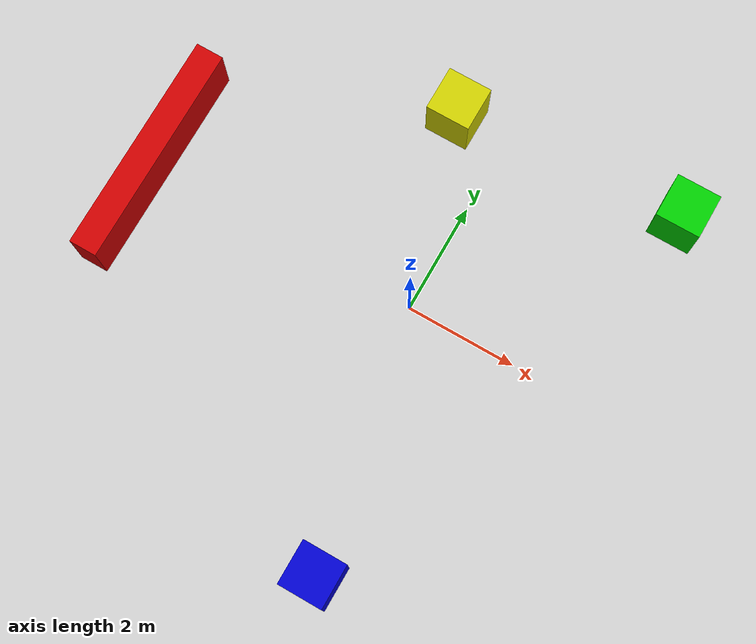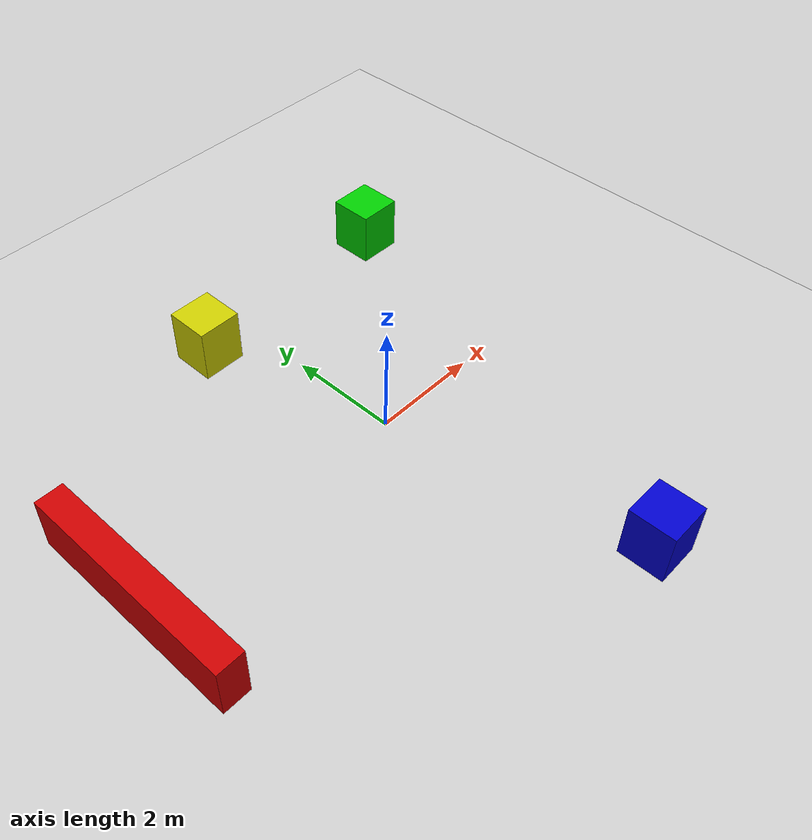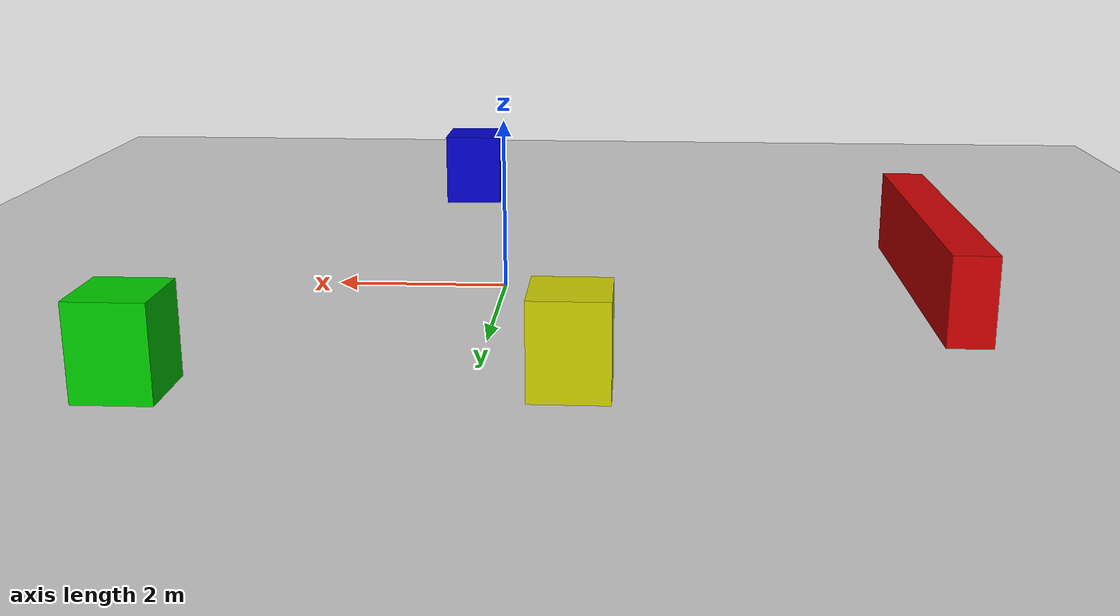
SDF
<sdf version="1.7">
 <world name="scenario_3_high_speed_static">
  <light name="sun" type="directional">
   <pose>0 0 10 0 -0 0</pose>
   <diffuse>0.8 0.8 0.8 1</diffuse>
   <specular>0.2 0.2 0.2 1</specular>
   <attenuation>
    <range>1000</range>
    <constant>0.9</constant>
    <linear>0.01</linear>
    <quadratic>0.001</quadratic>
   </attenuation>
   <direction>-0.5 0.1 -0.9</direction>
   <spot><inner_angle>0</inner_angle><outer_angle>0</outer_angle><falloff>0</falloff></spot>
  </light>
  <model name="ground_plane">
   <static>1</static>
   <link name="link">
    <collision name="collision">
     <geometry><plane><normal>0 0 1</normal><size>100 100</size></plane></geometry>
     <surface><friction><ode><mu>100</mu><mu2>50</mu2></ode></friction></surface>
    </collision>
    <visual name="visual">
     <cast_shadows>0</cast_shadows>
     <geometry><plane><normal>0 0 1</normal><size>100 100</size></plane></geometry>
     <material>
      <script><uri>file://media/materials/scripts/gazebo.material</uri><name>Gazebo/Grey</name></script>
     </material>
    </visual>
   </link>
  </model>
  <model name="wall_obstacle_1">
   <static>1</static>
   <pose>-5.03434 0 0.5 0 -0 0</pose>
   <link name="link">
    <collision name="collision"><geometry><box><size>0.5 4 1</size></box></geometry></collision>
    <visual name="visual">
     <geometry><box><size>0.5 4 1</size></box></geometry>
     <material><ambient>0.8 0 0 1</ambient><diffuse>0.8 0 0 1</diffuse></material>
    </visual>
   </link>
  </model>
  <model name="dense_obstacle_1">
   <static>1</static>
   <pose>3.25442 3.59088 0.5 0 -0 0</pose>
   <link name="link">
    <collision name="collision"><geometry><box><size>0.8 0.8 1</size></box></geometry></collision>
    <visual name="visual">
     <geometry><box><size>0.8 0.8 1</size></box></geometry>
     <material><ambient>0 0.8 0 1</ambient><diffuse>0 0.8 0 1</diffuse></material>
    </visual>
   </link>
  </model>
  <model name="dense_obstacle_2">
   <static>1</static>
   <pose>0.913578 -4.66075 0.5 0 -0 0</pose>
   <link name="link">
    <collision name="collision"><geometry><box><size>0.8 0.8 1</size></box></geometry></collision>
    <visual name="visual">
     <geometry><box><size>0.8 0.8 1</size></box></geometry>
     <material><ambient>0 0 0.8 1</ambient><diffuse>0 0 0.8 1</diffuse></material>
    </visual>
   </link>
  </model>
  <model name="dense_obstacle_3">
   <static>1</static>
   <pose>-0.954891 3.34686 0.5 0 -0 0</pose>
   <link name="link">
    <collision name="collision"><geometry><box><size>0.8 0.8 1</size></box></geometry></collision>
    <visual name="visual">
     <geometry><box><size>0.8 0.8 1</size></box></geometry>
     <material><ambient>0.8 0.8 0 1</ambient><diffuse>0.8 0.8 0 1</diffuse></material>
    </visual>
   </link>
  </model>
  <gravity>0 0 -9.8</gravity>
  <magnetic_field>6e-06 2.3e-05 -4.2e-05</magnetic_field>
  <atmosphere type="adiabatic"/>
  <physics type="ode">
   <max_step_size>0.001</max_step_size>
   <real_time_factor>1</real_time_factor>
   <real_time_update_rate>1000</real_time_update_rate>
  </physics>
  <scene><ambient>0.4 0.4 0.4 1</ambient><background>0.7 0.7 0.7 1</background><shadows>1</shadows></scene>
  <audio><device>default</device></audio>
  <spherical_coordinates>
   <surface_model>EARTH_WGS84</surface_model>
   <latitude_deg>0</latitude_deg>
   <longitude_deg>0</longitude_deg>
   <elevation>0</elevation>
   <heading_deg>0</heading_deg>
  </spherical_coordinates>
 </world>
</sdf>
